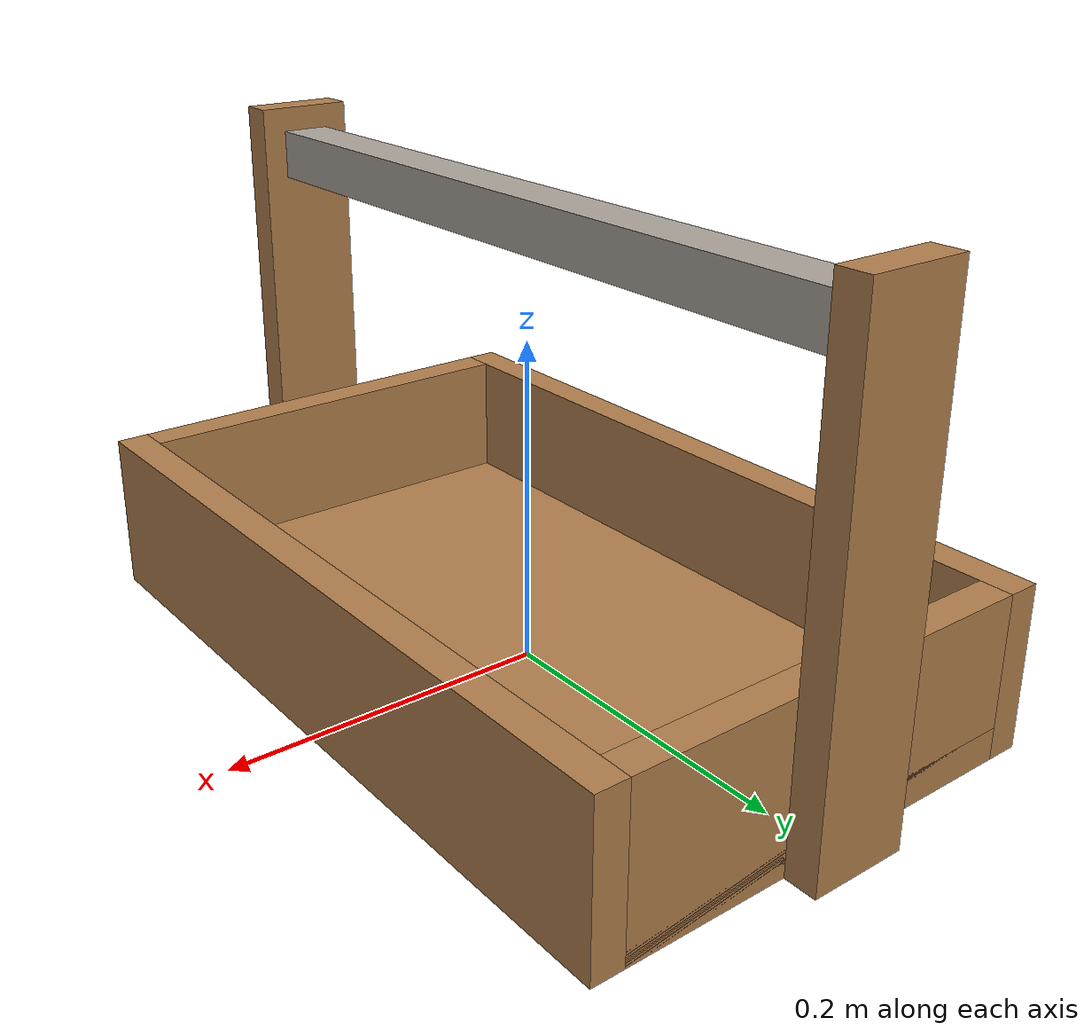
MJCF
<?xml version="1.0" encoding="utf-8"?>
<!-- from https://github.com/vikashplus/mj_envs/tree/master/mj_envs/hand_manipulation_suite/assets -->
<!-- Information about door can be found in this paper: https://arxiv.org/pdf/1709.10087.pdf -->

<mujoco model="toolbox">
  <asset>
    <texture file="../textures/light-wood.png" type="cube" name="light-wood" />
    <texture file="../textures/steel-brushed.png" type="cube" name="steel" />
    <material name="MatSteel" texture="steel" specular="1" shininess="0.3" rgba="0.9 0.9 0.9 1" />
    <material name="MatLightWood" texture="light-wood" texrepeat="3 3" specular="0.4" shininess="0.1" />
  </asset>
  <worldbody>
    <body>
      <body name="object">
        <site name="origin" pos="0 0 0" rgba="0 0 0 0" size="0.005"/>
        <inertial pos="0 0 0" mass="0.2" diaginertia="0.1 0.1 0.05"/>

        <body name="body">
          <geom pos="0 0.0 0.01" size="0.13 0.2 0.01" type="box"
            group="0" friction='1 1 1'
            density="0.1"
            rgba="0 0 0 0"
            />
          <geom pos="0  0.23 0.05" size="0.13 0.01 0.05" type="box"
            group="0" friction='1 1 1'
            density="0.01"
            rgba="0 0 0 0"
            />
          <geom pos="0 -0.23 0.05" size="0.13 0.01 0.05" type="box"
            group="0" friction='1 1 1'
            density="0.01"
            rgba="0 0 0 0"
            />
          <geom pos=" 0.14 0 0.05" size="0.01 0.24 0.05" type="box"
            group="0" friction='1 1 1'
            density="0.01"
            rgba="0 0 0 0"
            />
          <geom pos="-0.14 0 0.05" size="0.01 0.24 0.05" type="box"
            group="0" friction='1 1 1'
            density="0.01"
            rgba="0 0 0 0"
            />
          <geom pos="0 0.25 0.15" size="0.03 0.01 0.15" type="box"
            group="0" friction='1 1 1'
            density="0.01"
            rgba="0 0 0 0"
            />
          <geom pos="0 -0.25 0.15" size="0.03 0.01 0.15" type="box"
            group="0" friction='1 1 1'
            density="0.01"
            rgba="0 0 0 0"
            />

          <geom pos="0 0.0 0.01" size="0.13 0.24 0.01" type="box"
            group="1" contype="0" conaffinity="0"
            material="MatLightWood"
            />
          <geom pos="0  0.23 0.05" size="0.13 0.01 0.05" type="box"
            group="1" contype="0" conaffinity="0"
            material="MatLightWood"
            />
          <geom pos="0 -0.23 0.05" size="0.13 0.01 0.05" type="box"
            group="1" contype="0" conaffinity="0"
            material="MatLightWood"
            />
          <geom pos=" 0.14 0 0.05" size="0.01 0.24 0.05" type="box"
            group="1" contype="0" conaffinity="0"
            material="MatLightWood"
            />
          <geom pos="-0.14 0 0.05" size="0.01 0.24 0.05" type="box"
            group="1" contype="0" conaffinity="0"
            material="MatLightWood"
            />
          <geom pos="0 0.25 0.15" size="0.03 0.01 0.15" type="box"
            group="1" contype="0" conaffinity="0"
            material="MatLightWood"
            />
          <geom pos="0 -0.25 0.15" size="0.03 0.01 0.15" type="box"
            group="1" contype="0" conaffinity="0"
            material="MatLightWood"
            />

        </body>

        <body name="handle_body">
          <geom fromto="0 0.24 0.27 0 -0.24 0.27" size="0.015" type="box"
            group="0" friction='1.5 1.5 1.5'
            density="0.01"
            rgba="0 0 0 0"
            />
        <geom name="handle_visual" fromto="0 0.24 0.27 0 -0.24 0.27" size="0.015" type="box"
            group="1" contype="0" conaffinity="0"
            material="MatSteel"
            />
          <site name="site_handle" pos="0 -0.03 0" size="0.02" rgba="0 0 1 0" />
        </body>

      </body>
      <site name="bottom_site" pos="0 0 -0.0207" rgba="0 0 0 0" size="0.005"/>
      <site name="top_site" pos="0 0 0.007" rgba="0 0 0 0" size="0.005"/>
      <site name="horizontal_radius_site" pos="0 0 0" rgba="0 0 0 0" size="0.003"/>
    </body>

  </worldbody>
</mujoco>
